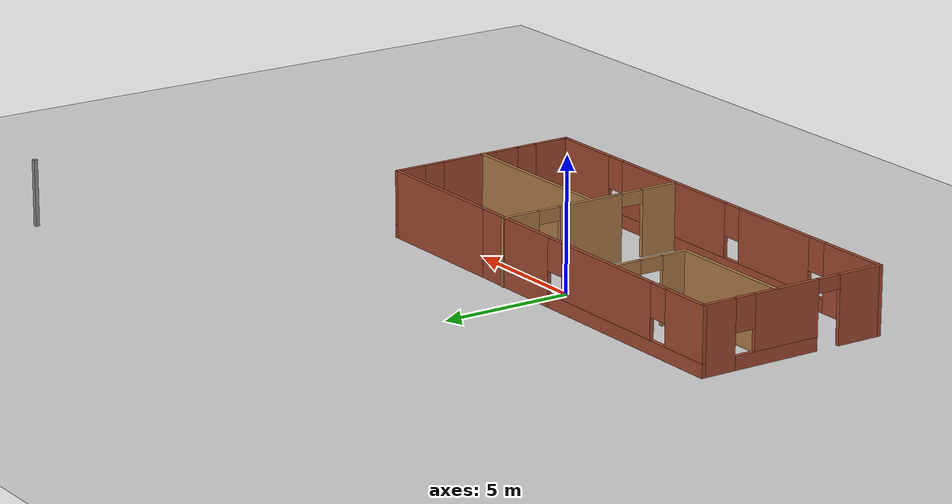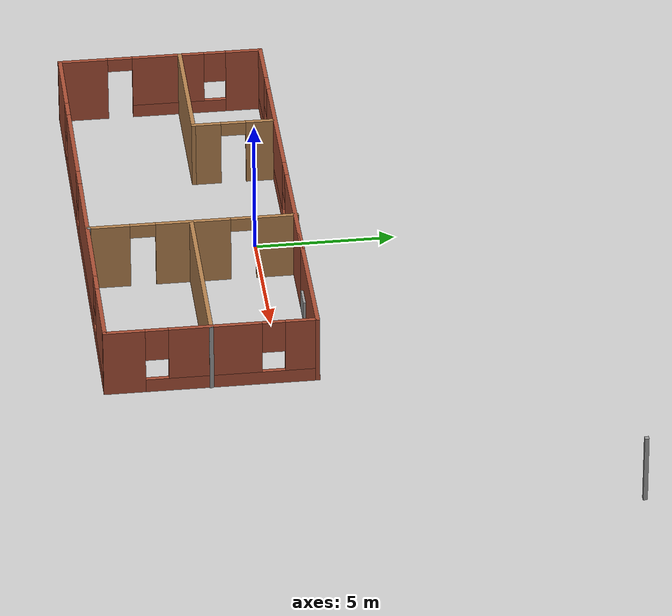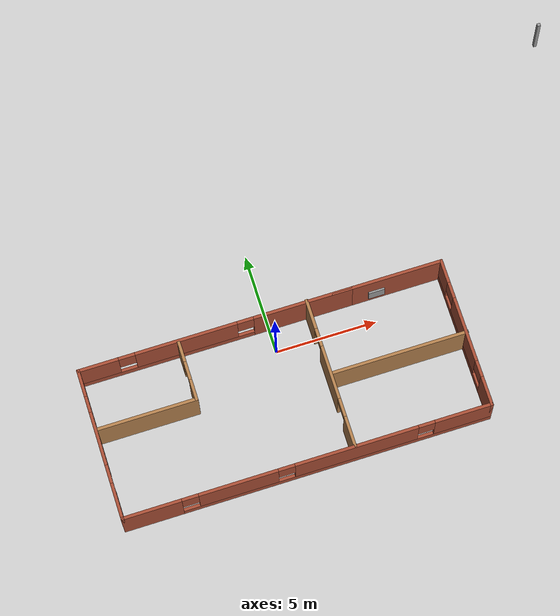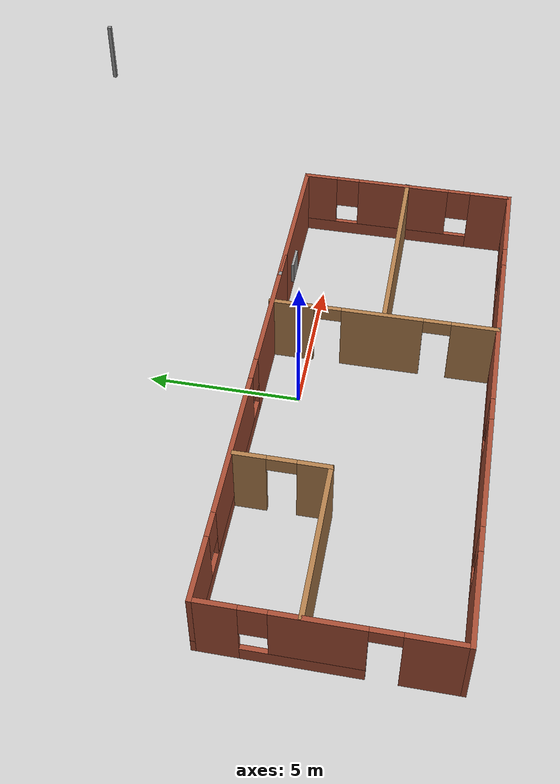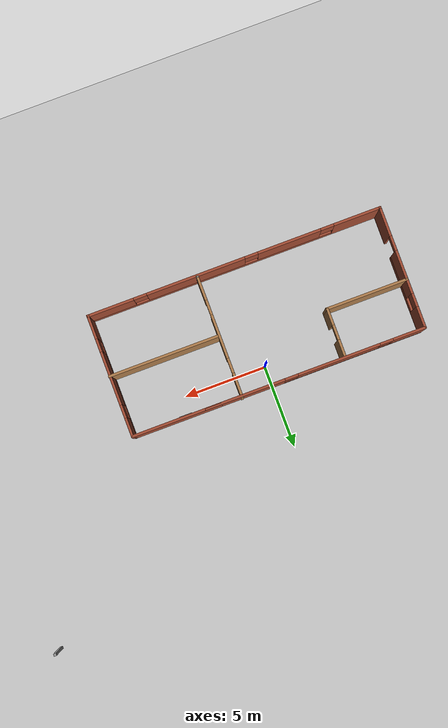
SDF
<sdf version="1.6">
 <world name="default">
  <light name="sun" type="directional">
   <pose>0 0 10 0 -0 0</pose>
   <diffuse>0.8 0.8 0.8 1</diffuse>
   <specular>0.2 0.2 0.2 1</specular>
   <attenuation>
    <range>1000</range>
    <constant>0.9</constant>
    <linear>0.01</linear>
    <quadratic>0.001</quadratic>
   </attenuation>
   <direction>-0.5 0.1 -0.9</direction>
  </light>
  <model name="ground_plane">
   <static>1</static>
   <link name="link">
    <collision name="collision">
     <geometry><plane><normal>0 0 1</normal><size>100 100</size></plane></geometry>
     <surface>
      <contact><collide_bitmask>65535</collide_bitmask></contact>
      <friction><ode><mu>100</mu><mu2>50</mu2></ode></friction>
     </surface>
    </collision>
    <visual name="visual">
     <cast_shadows>0</cast_shadows>
     <geometry><plane><normal>0 0 1</normal><size>100 100</size></plane></geometry>
     <material>
      <script><uri>file://media/materials/scripts/gazebo.material</uri><name>Gazebo/Grey</name></script>
     </material>
    </visual>
   </link>
  </model>
  <gravity>0 0 -9.8</gravity>
  <magnetic_field>6e-06 2.3e-05 -4.2e-05</magnetic_field>
  <atmosphere type="adiabatic"/>
  <physics name="default_physics" default="0" type="ode">
   <max_step_size>0.001</max_step_size>
   <real_time_factor>1</real_time_factor>
   <real_time_update_rate>1000</real_time_update_rate>
  </physics>
  <scene><ambient>0.4 0.4 0.4 1</ambient><background>0.7 0.7 0.7 1</background><shadows>1</shadows></scene>
  <spherical_coordinates>
   <surface_model>EARTH_WGS84</surface_model>
   <latitude_deg>0</latitude_deg>
   <longitude_deg>0</longitude_deg>
   <elevation>0</elevation>
   <heading_deg>0</heading_deg>
  </spherical_coordinates>
  <model name="House">
   <pose>3.87692 2.60224 0 0 -0 0</pose>
   <link name="Wall_13">
    <pose>-6.46944 -1.37364 0 0 -0 3.14159</pose>
    <visual name="Wall_13_Visual_0">
     <pose>-4.3125 0 1.25 0 -0 0</pose>
     <geometry><box><size>4.875 0.15 2.5</size></box></geometry>
     <material>
      <script><uri>file://media/materials/scripts/gazebo.material</uri><name>Gazebo/Bricks</name></script>
      <ambient>1 1 1 1</ambient>
     </material>
     <meta><layer>0</layer></meta>
    </visual>
    <collision name="Wall_13_Collision_0">
     <geometry><box><size>4.875 0.15 2.5</size></box></geometry>
     <pose>-4.3125 0 1.25 0 -0 0</pose>
    </collision>
    <visual name="Wall_13_Visual_1">
     <pose>2.4375 0 0.25 0 -0 0</pose>
     <geometry><box><size>8.625 0.15 0.5</size></box></geometry>
     <material>
      <script><uri>file://media/materials/scripts/gazebo.material</uri><name>Gazebo/Bricks</name></script>
      <ambient>1 1 1 1</ambient>
     </material>
     <meta><layer>0</layer></meta>
    </visual>
    <collision name="Wall_13_Collision_1">
     <geometry><box><size>8.625 0.15 0.5</size></box></geometry>
     <pose>2.4375 0 0.25 0 -0 0</pose>
    </collision>
    <visual name="Wall_13_Visual_2">
     <pose>1.425 0 1.5 0 -0 0</pose>
     <geometry><box><size>5 0.15 2</size></box></geometry>
     <material>
      <script><uri>file://media/materials/scripts/gazebo.material</uri><name>Gazebo/Bricks</name></script>
      <ambient>1 1 1 1</ambient>
     </material>
     <meta><layer>0</layer></meta>
    </visual>
    <collision name="Wall_13_Collision_2">
     <geometry><box><size>5 0.15 2</size></box></geometry>
     <pose>1.425 0 1.5 0 -0 0</pose>
    </collision>
    <visual name="Wall_13_Visual_3">
     <pose>5.7375 0 1.5 0 -0 0</pose>
     <geometry><box><size>2.025 0.15 2</size></box></geometry>
     <material>
      <script><uri>file://media/materials/scripts/gazebo.material</uri><name>Gazebo/Bricks</name></script>
      <ambient>1 1 1 1</ambient>
     </material>
     <meta><layer>0</layer></meta>
    </visual>
    <collision name="Wall_13_Collision_3">
     <geometry><box><size>2.025 0.15 2</size></box></geometry>
     <pose>5.7375 0 1.5 0 -0 0</pose>
    </collision>
    <visual name="Wall_13_Visual_4">
     <pose>-1.475 0 1.9 0 -0 0</pose>
     <geometry><box><size>0.8 0.15 1.2</size></box></geometry>
     <material>
      <script><uri>file://media/materials/scripts/gazebo.material</uri><name>Gazebo/Bricks</name></script>
      <ambient>1 1 1 1</ambient>
     </material>
     <meta><layer>0</layer></meta>
    </visual>
    <collision name="Wall_13_Collision_4">
     <geometry><box><size>0.8 0.15 1.2</size></box></geometry>
     <pose>-1.475 0 1.9 0 -0 0</pose>
    </collision>
    <visual name="Wall_13_Visual_5">
     <pose>4.325 0 1.9 0 -0 0</pose>
     <geometry><box><size>0.8 0.15 1.2</size></box></geometry>
     <material>
      <script><uri>file://media/materials/scripts/gazebo.material</uri><name>Gazebo/Bricks</name></script>
      <ambient>1 1 1 1</ambient>
     </material>
     <meta><layer>0</layer></meta>
    </visual>
    <collision name="Wall_13_Collision_5">
     <geometry><box><size>0.8 0.15 1.2</size></box></geometry>
     <pose>4.325 0 1.9 0 -0 0</pose>
    </collision>
   </link>
   <link name="Wall_14">
    <pose>-13.1444 -5.04864 0 0 0 -1.5708</pose>
    <visual name="Wall_14_Visual_0">
     <pose>-3.0725 0 1.25 0 -0 0</pose>
     <geometry><box><size>1.355 0.15 2.5</size></box></geometry>
     <material>
      <script><uri>file://media/materials/scripts/gazebo.material</uri><name>Gazebo/Bricks</name></script>
      <ambient>1 1 1 1</ambient>
     </material>
     <meta><layer>0</layer></meta>
    </visual>
    <collision name="Wall_14_Collision_0">
     <geometry><box><size>1.355 0.15 2.5</size></box></geometry>
     <pose>-3.0725 0 1.25 0 -0 0</pose>
    </collision>
    <visual name="Wall_14_Visual_1">
     <pose>2.8425 0 1.25 0 -0 0</pose>
     <geometry><box><size>1.815 0.15 2.5</size></box></geometry>
     <material>
      <script><uri>file://media/materials/scripts/gazebo.material</uri><name>Gazebo/Bricks</name></script>
      <ambient>1 1 1 1</ambient>
     </material>
     <meta><layer>0</layer></meta>
    </visual>
    <collision name="Wall_14_Collision_1">
     <geometry><box><size>1.815 0.15 2.5</size></box></geometry>
     <pose>2.8425 0 1.25 0 -0 0</pose>
    </collision>
    <visual name="Wall_14_Visual_2">
     <pose>-0.68 0 0.25 0 -0 0</pose>
     <geometry><box><size>3.43 0.15 0.5</size></box></geometry>
     <material>
      <script><uri>file://media/materials/scripts/gazebo.material</uri><name>Gazebo/Bricks</name></script>
      <ambient>1 1 1 1</ambient>
     </material>
     <meta><layer>0</layer></meta>
    </visual>
    <collision name="Wall_14_Collision_2">
     <geometry><box><size>3.43 0.15 0.5</size></box></geometry>
     <pose>-0.68 0 0.25 0 -0 0</pose>
    </collision>
    <visual name="Wall_14_Visual_3">
     <pose>-0.28 0 1.5 0 -0 0</pose>
     <geometry><box><size>2.63 0.15 2</size></box></geometry>
     <material>
      <script><uri>file://media/materials/scripts/gazebo.material</uri><name>Gazebo/Bricks</name></script>
      <ambient>1 1 1 1</ambient>
     </material>
     <meta><layer>0</layer></meta>
    </visual>
    <collision name="Wall_14_Collision_3">
     <geometry><box><size>2.63 0.15 2</size></box></geometry>
     <pose>-0.28 0 1.5 0 -0 0</pose>
    </collision>
    <visual name="Wall_14_Visual_4">
     <pose>-1.995 0 1.9 0 -0 0</pose>
     <geometry><box><size>0.8 0.15 1.2</size></box></geometry>
     <material>
      <script><uri>file://media/materials/scripts/gazebo.material</uri><name>Gazebo/Bricks</name></script>
      <ambient>1 1 1 1</ambient>
     </material>
     <meta><layer>0</layer></meta>
    </visual>
    <collision name="Wall_14_Collision_4">
     <geometry><box><size>0.8 0.15 1.2</size></box></geometry>
     <pose>-1.995 0 1.9 0 -0 0</pose>
    </collision>
    <visual name="Wall_14_Visual_5">
     <pose>1.485 0 2.25 0 -0 0</pose>
     <geometry><box><size>0.9 0.15 0.5</size></box></geometry>
     <material>
      <script><uri>file://media/materials/scripts/gazebo.material</uri><name>Gazebo/Bricks</name></script>
      <ambient>1 1 1 1</ambient>
     </material>
     <meta><layer>0</layer></meta>
    </visual>
    <collision name="Wall_14_Collision_5">
     <geometry><box><size>0.9 0.15 0.5</size></box></geometry>
     <pose>1.485 0 2.25 0 -0 0</pose>
    </collision>
   </link>
   <link name="Wall_15">
    <pose>-4.21944 -8.72364 0 0 -0 0</pose>
    <visual name="Wall_15_Visual_0">
     <pose>-7.5475 0 1.25 0 -0 0</pose>
     <geometry><box><size>2.905 0.15 2.5</size></box></geometry>
     <material>
      <script><uri>file://media/materials/scripts/gazebo.material</uri><name>Gazebo/Bricks</name></script>
      <ambient>1 1 1 1</ambient>
     </material>
     <meta><layer>0</layer></meta>
    </visual>
    <collision name="Wall_15_Collision_0">
     <geometry><box><size>2.905 0.15 2.5</size></box></geometry>
     <pose>-7.5475 0 1.25 0 -0 0</pose>
    </collision>
    <visual name="Wall_15_Visual_1">
     <pose>1.4525 0 0.25 0 -0 0</pose>
     <geometry><box><size>15.095 0.15 0.5</size></box></geometry>
     <material>
      <script><uri>file://media/materials/scripts/gazebo.material</uri><name>Gazebo/Bricks</name></script>
      <ambient>1 1 1 1</ambient>
     </material>
     <meta><layer>0</layer></meta>
    </visual>
    <collision name="Wall_15_Collision_1">
     <geometry><box><size>15.095 0.15 0.5</size></box></geometry>
     <pose>1.4525 0 0.25 0 -0 0</pose>
    </collision>
    <visual name="Wall_15_Visual_2">
     <pose>-3.375 0 1.5 0 -0 0</pose>
     <geometry><box><size>3.84 0.15 2</size></box></geometry>
     <material>
      <script><uri>file://media/materials/scripts/gazebo.material</uri><name>Gazebo/Bricks</name></script>
      <ambient>1 1 1 1</ambient>
     </material>
     <meta><layer>0</layer></meta>
    </visual>
    <collision name="Wall_15_Collision_2">
     <geometry><box><size>3.84 0.15 2</size></box></geometry>
     <pose>-3.375 0 1.5 0 -0 0</pose>
    </collision>
    <visual name="Wall_15_Visual_3">
     <pose>2.345 0 1.5 0 -0 0</pose>
     <geometry><box><size>6 0.15 2</size></box></geometry>
     <material>
      <script><uri>file://media/materials/scripts/gazebo.material</uri><name>Gazebo/Bricks</name></script>
      <ambient>1 1 1 1</ambient>
     </material>
     <meta><layer>0</layer></meta>
    </visual>
    <collision name="Wall_15_Collision_3">
     <geometry><box><size>6 0.15 2</size></box></geometry>
     <pose>2.345 0 1.5 0 -0 0</pose>
    </collision>
    <visual name="Wall_15_Visual_4">
     <pose>7.5725 0 1.5 0 -0 0</pose>
     <geometry><box><size>2.855 0.15 2</size></box></geometry>
     <material>
      <script><uri>file://media/materials/scripts/gazebo.material</uri><name>Gazebo/Bricks</name></script>
      <ambient>1 1 1 1</ambient>
     </material>
     <meta><layer>0</layer></meta>
    </visual>
    <collision name="Wall_15_Collision_4">
     <geometry><box><size>2.855 0.15 2</size></box></geometry>
     <pose>7.5725 0 1.5 0 -0 0</pose>
    </collision>
    <visual name="Wall_15_Visual_5">
     <pose>-5.695 0 1.9 0 -0 0</pose>
     <geometry><box><size>0.8 0.15 1.2</size></box></geometry>
     <material>
      <script><uri>file://media/materials/scripts/gazebo.material</uri><name>Gazebo/Bricks</name></script>
      <ambient>1 1 1 1</ambient>
     </material>
     <meta><layer>0</layer></meta>
    </visual>
    <collision name="Wall_15_Collision_5">
     <geometry><box><size>0.8 0.15 1.2</size></box></geometry>
     <pose>-5.695 0 1.9 0 -0 0</pose>
    </collision>
    <visual name="Wall_15_Visual_6">
     <pose>-1.055 0 1.9 0 -0 0</pose>
     <geometry><box><size>0.8 0.15 1.2</size></box></geometry>
     <material>
      <script><uri>file://media/materials/scripts/gazebo.material</uri><name>Gazebo/Bricks</name></script>
      <ambient>1 1 1 1</ambient>
     </material>
     <meta><layer>0</layer></meta>
    </visual>
    <collision name="Wall_15_Collision_6">
     <geometry><box><size>0.8 0.15 1.2</size></box></geometry>
     <pose>-1.055 0 1.9 0 -0 0</pose>
    </collision>
    <visual name="Wall_15_Visual_7">
     <pose>5.745 0 1.9 0 -0 0</pose>
     <geometry><box><size>0.8 0.15 1.2</size></box></geometry>
     <material>
      <script><uri>file://media/materials/scripts/gazebo.material</uri><name>Gazebo/Bricks</name></script>
      <ambient>1 1 1 1</ambient>
     </material>
     <meta><layer>0</layer></meta>
    </visual>
    <collision name="Wall_15_Collision_7">
     <geometry><box><size>0.8 0.15 1.2</size></box></geometry>
     <pose>5.745 0 1.9 0 -0 0</pose>
    </collision>
   </link>
   <link name="Wall_16">
    <pose>4.70556 -5.04864 0 0 -0 1.5708</pose>
    <visual name="Wall_16_Visual_0">
     <pose>-3.0175 0 1.25 0 -0 0</pose>
     <geometry><box><size>1.465 0.15 2.5</size></box></geometry>
     <material>
      <script><uri>file://media/materials/scripts/gazebo.material</uri><name>Gazebo/Bricks</name></script>
      <ambient>1 1 1 1</ambient>
     </material>
     <meta><layer>0</layer></meta>
    </visual>
    <collision name="Wall_16_Collision_0">
     <geometry><box><size>1.465 0.15 2.5</size></box></geometry>
     <pose>-3.0175 0 1.25 0 -0 0</pose>
    </collision>
    <visual name="Wall_16_Visual_1">
     <pose>0.7325 0 0.25 0 -0 0</pose>
     <geometry><box><size>6.035 0.15 0.5</size></box></geometry>
     <material>
      <script><uri>file://media/materials/scripts/gazebo.material</uri><name>Gazebo/Bricks</name></script>
      <ambient>1 1 1 1</ambient>
     </material>
     <meta><layer>0</layer></meta>
    </visual>
    <collision name="Wall_16_Collision_1">
     <geometry><box><size>6.035 0.15 0.5</size></box></geometry>
     <pose>0.7325 0 0.25 0 -0 0</pose>
    </collision>
    <visual name="Wall_16_Visual_2">
     <pose>0.135 0 1.5 0 -0 0</pose>
     <geometry><box><size>3.24 0.15 2</size></box></geometry>
     <material>
      <script><uri>file://media/materials/scripts/gazebo.material</uri><name>Gazebo/Bricks</name></script>
      <ambient>1 1 1 1</ambient>
     </material>
     <meta><layer>0</layer></meta>
    </visual>
    <collision name="Wall_16_Collision_2">
     <geometry><box><size>3.24 0.15 2</size></box></geometry>
     <pose>0.135 0 1.5 0 -0 0</pose>
    </collision>
    <visual name="Wall_16_Visual_3">
     <pose>3.1525 0 1.5 0 -0 0</pose>
     <geometry><box><size>1.195 0.15 2</size></box></geometry>
     <material>
      <script><uri>file://media/materials/scripts/gazebo.material</uri><name>Gazebo/Bricks</name></script>
      <ambient>1 1 1 1</ambient>
     </material>
     <meta><layer>0</layer></meta>
    </visual>
    <collision name="Wall_16_Collision_3">
     <geometry><box><size>1.195 0.15 2</size></box></geometry>
     <pose>3.1525 0 1.5 0 -0 0</pose>
    </collision>
    <visual name="Wall_16_Visual_4">
     <pose>-1.885 0 1.9 0 -0 0</pose>
     <geometry><box><size>0.8 0.15 1.2</size></box></geometry>
     <material>
      <script><uri>file://media/materials/scripts/gazebo.material</uri><name>Gazebo/Bricks</name></script>
      <ambient>1 1 1 1</ambient>
     </material>
     <meta><layer>0</layer></meta>
    </visual>
    <collision name="Wall_16_Collision_4">
     <geometry><box><size>0.8 0.15 1.2</size></box></geometry>
     <pose>-1.885 0 1.9 0 -0 0</pose>
    </collision>
    <visual name="Wall_16_Visual_5">
     <pose>2.155 0 1.9 0 -0 0</pose>
     <geometry><box><size>0.8 0.15 1.2</size></box></geometry>
     <material>
      <script><uri>file://media/materials/scripts/gazebo.material</uri><name>Gazebo/Bricks</name></script>
      <ambient>1 1 1 1</ambient>
     </material>
     <meta><layer>0</layer></meta>
    </visual>
    <collision name="Wall_16_Collision_5">
     <geometry><box><size>0.8 0.15 1.2</size></box></geometry>
     <pose>2.155 0 1.9 0 -0 0</pose>
    </collision>
   </link>
   <link name="Wall_17">
    <collision name="Wall_17_Collision">
     <geometry><box><size>5.5 0.15 2.5</size></box></geometry>
     <pose>0 0 1.25 0 -0 0</pose>
    </collision>
    <visual name="Wall_17_Visual">
     <pose>0 0 1.25 0 -0 0</pose>
     <geometry><box><size>5.5 0.15 2.5</size></box></geometry>
     <material>
      <script><uri>file://media/materials/scripts/gazebo.material</uri><name>Gazebo/Bricks</name></script>
      <ambient>1 1 1 1</ambient>
     </material>
     <meta><layer>0</layer></meta>
    </visual>
    <pose>2.03056 -1.37364 0 0 -0 3.14159</pose>
   </link>
   <link name="Wall_18">
    <collision name="Wall_18_Collision">
     <geometry><box><size>0.16 0.15 2.5</size></box></geometry>
     <pose>0 0 1.25 0 -0 0</pose>
    </collision>
    <visual name="Wall_18_Visual">
     <pose>0 0 1.25 0 -0 0</pose>
     <geometry><box><size>0.16 0.15 2.5</size></box></geometry>
     <material>
      <script><uri>file://media/materials/scripts/gazebo.material</uri><name>Gazebo/Grey</name></script>
      <ambient>1 1 1 1</ambient>
     </material>
     <meta><layer>0</layer></meta>
    </visual>
    <pose>-0.63944 -1.37364 0 0 -0 0</pose>
   </link>
   <link name="Wall_2">
    <collision name="Wall_2_Collision">
     <geometry><box><size>0.16 0.15 2.5</size></box></geometry>
     <pose>0 0 1.25 0 -0 0</pose>
    </collision>
    <visual name="Wall_2_Visual">
     <pose>0 0 1.25 0 -0 0</pose>
     <geometry><box><size>0.16 0.15 2.5</size></box></geometry>
     <material>
      <script><uri>file://media/materials/scripts/gazebo.material</uri><name>Gazebo/Grey</name></script>
      <ambient>1 1 1 1</ambient>
     </material>
     <meta><layer>0</layer></meta>
    </visual>
    <pose>13.1394 8.72364 0 0 -0 0</pose>
   </link>
   <link name="Wall_28">
    <pose>-1.95444 -5.00864 0 0 0 -1.5708</pose>
    <visual name="Wall_28_Visual_0">
     <pose>-2.9975 0 1.25 0 -0 0</pose>
     <geometry><box><size>1.505 0.15 2.5</size></box></geometry>
     <material>
      <script><uri>file://media/materials/scripts/gazebo.material</uri><name>Gazebo/Wood</name></script>
      <ambient>1 1 1 1</ambient>
     </material>
     <meta><layer>0</layer></meta>
    </visual>
    <collision name="Wall_28_Collision_0">
     <geometry><box><size>1.505 0.15 2.5</size></box></geometry>
     <pose>-2.9975 0 1.25 0 -0 0</pose>
    </collision>
    <visual name="Wall_28_Visual_1">
     <pose>-0.015 0 1.25 0 -0 0</pose>
     <geometry><box><size>2.66 0.15 2.5</size></box></geometry>
     <material>
      <script><uri>file://media/materials/scripts/gazebo.material</uri><name>Gazebo/Wood</name></script>
      <ambient>1 1 1 1</ambient>
     </material>
     <meta><layer>0</layer></meta>
    </visual>
    <collision name="Wall_28_Collision_1">
     <geometry><box><size>2.66 0.15 2.5</size></box></geometry>
     <pose>-0.015 0 1.25 0 -0 0</pose>
    </collision>
    <visual name="Wall_28_Visual_2">
     <pose>2.9825 0 1.25 0 -0 0</pose>
     <geometry><box><size>1.535 0.15 2.5</size></box></geometry>
     <material>
      <script><uri>file://media/materials/scripts/gazebo.material</uri><name>Gazebo/Wood</name></script>
      <ambient>1 1 1 1</ambient>
     </material>
     <meta><layer>0</layer></meta>
    </visual>
    <collision name="Wall_28_Collision_2">
     <geometry><box><size>1.535 0.15 2.5</size></box></geometry>
     <pose>2.9825 0 1.25 0 -0 0</pose>
    </collision>
    <visual name="Wall_28_Visual_3">
     <pose>-1.795 0 2.25 0 -0 0</pose>
     <geometry><box><size>0.9 0.15 0.5</size></box></geometry>
     <material>
      <script><uri>file://media/materials/scripts/gazebo.material</uri><name>Gazebo/Wood</name></script>
      <ambient>1 1 1 1</ambient>
     </material>
     <meta><layer>0</layer></meta>
    </visual>
    <collision name="Wall_28_Collision_3">
     <geometry><box><size>0.9 0.15 0.5</size></box></geometry>
     <pose>-1.795 0 2.25 0 -0 0</pose>
    </collision>
    <visual name="Wall_28_Visual_4">
     <pose>1.765 0 2.25 0 -0 0</pose>
     <geometry><box><size>0.9 0.15 0.5</size></box></geometry>
     <material>
      <script><uri>file://media/materials/scripts/gazebo.material</uri><name>Gazebo/Wood</name></script>
      <ambient>1 1 1 1</ambient>
     </material>
     <meta><layer>0</layer></meta>
    </visual>
    <collision name="Wall_28_Collision_4">
     <geometry><box><size>0.9 0.15 0.5</size></box></geometry>
     <pose>1.765 0 2.25 0 -0 0</pose>
    </collision>
   </link>
   <link name="Wall_29">
    <collision name="Wall_29_Collision">
     <geometry><box><size>0.16 0.15 2.5</size></box></geometry>
     <pose>0 0 1.25 0 -0 0</pose>
    </collision>
    <visual name="Wall_29_Visual">
     <pose>0 0 1.25 0 -0 0</pose>
     <geometry><box><size>0.16 0.15 2.5</size></box></geometry>
     <material>
      <script><uri>file://media/materials/scripts/gazebo.material</uri><name>Gazebo/Grey</name></script>
      <ambient>1 1 1 1</ambient>
     </material>
     <meta><layer>0</layer></meta>
    </visual>
    <pose>-1.94944 -8.68364 0 0 -0 0</pose>
   </link>
   <link name="Wall_34">
    <collision name="Wall_34_Collision">
     <geometry><box><size>0.16 0.15 2.5</size></box></geometry>
     <pose>0 0 1.25 0 -0 0</pose>
    </collision>
    <visual name="Wall_34_Visual">
     <pose>0 0 1.25 0 -0 0</pose>
     <geometry><box><size>0.16 0.15 2.5</size></box></geometry>
     <material>
      <script><uri>file://media/materials/scripts/gazebo.material</uri><name>Gazebo/Grey</name></script>
      <ambient>1 1 1 1</ambient>
     </material>
     <meta><layer>0</layer></meta>
    </visual>
    <pose>4.73056 -5.05364 0 0 -0 0</pose>
   </link>
   <link name="Wall_35">
    <collision name="Wall_35_Collision">
     <geometry><box><size>6.75 0.15 2.5</size></box></geometry>
     <pose>0 0 1.25 0 -0 0</pose>
    </collision>
    <visual name="Wall_35_Visual">
     <pose>0 0 1.25 0 -0 0</pose>
     <geometry><box><size>6.75 0.15 2.5</size></box></geometry>
     <material>
      <script><uri>file://media/materials/scripts/gazebo.material</uri><name>Gazebo/Wood</name></script>
      <ambient>1 1 1 1</ambient>
     </material>
     <meta><layer>0</layer></meta>
    </visual>
    <pose>1.43556 -5.05364 0 0 -0 3.14159</pose>
   </link>
   <link name="Wall_37">
    <collision name="Wall_37_Collision">
     <geometry><box><size>5 0.15 2.5</size></box></geometry>
     <pose>0 0 1.25 0 -0 0</pose>
    </collision>
    <visual name="Wall_37_Visual">
     <pose>0 0 1.25 0 -0 0</pose>
     <geometry><box><size>5 0.15 2.5</size></box></geometry>
     <material>
      <script><uri>file://media/materials/scripts/gazebo.material</uri><name>Gazebo/Wood</name></script>
      <ambient>1 1 1 1</ambient>
     </material>
     <meta><layer>0</layer></meta>
    </visual>
    <pose>-10.6994 -4.33364 0 0 -0 3.14159</pose>
   </link>
   <link name="Wall_43">
    <pose>-8.27444 -2.90864 0 0 -0 1.5708</pose>
    <visual name="Wall_43_Visual_0">
     <pose>-0.9675 0 1.25 0 -0 0</pose>
     <geometry><box><size>1.065 0.15 2.5</size></box></geometry>
     <material>
      <script><uri>file://media/materials/scripts/gazebo.material</uri><name>Gazebo/Wood</name></script>
      <ambient>1 1 1 1</ambient>
     </material>
     <meta><layer>0</layer></meta>
    </visual>
    <collision name="Wall_43_Collision_0">
     <geometry><box><size>1.065 0.15 2.5</size></box></geometry>
     <pose>-0.9675 0 1.25 0 -0 0</pose>
    </collision>
    <visual name="Wall_43_Visual_1">
     <pose>0.9825 0 1.25 0 -0 0</pose>
     <geometry><box><size>1.035 0.15 2.5</size></box></geometry>
     <material>
      <script><uri>file://media/materials/scripts/gazebo.material</uri><name>Gazebo/Wood</name></script>
      <ambient>1 1 1 1</ambient>
     </material>
     <meta><layer>0</layer></meta>
    </visual>
    <collision name="Wall_43_Collision_1">
     <geometry><box><size>1.035 0.15 2.5</size></box></geometry>
     <pose>0.9825 0 1.25 0 -0 0</pose>
    </collision>
    <visual name="Wall_43_Visual_2">
     <pose>0.015 0 2.25 0 -0 0</pose>
     <geometry><box><size>0.9 0.15 0.5</size></box></geometry>
     <material>
      <script><uri>file://media/materials/scripts/gazebo.material</uri><name>Gazebo/Wood</name></script>
      <ambient>1 1 1 1</ambient>
     </material>
     <meta><layer>0</layer></meta>
    </visual>
    <collision name="Wall_43_Collision_2">
     <geometry><box><size>0.9 0.15 0.5</size></box></geometry>
     <pose>0.015 0 2.25 0 -0 0</pose>
    </collision>
   </link>
   <link name="Window_3">
    <collision name="Window_3_Collision">
     <geometry><box><size>0.8 0.17 0.8</size></box></geometry>
     <pose>0 0 0.4 0 -0 0</pose>
    </collision>
    <visual name="Window_3_Visual">
     <pose>0 0 0.4 0 -0 0</pose>
     <geometry><box><size>0.8 0.17 0.8</size></box></geometry>
     <material>
      <script><uri>file://media/materials/scripts/gazebo.material</uri><name>Gazebo/Grey</name></script>
     </material>
    </visual>
    <pose>1.48556 -1.45364 0.5 0 -0 0</pose>
   </link>
   <static>1</static>
  </model>
  <plugin filename="libcollision_map_creator.so" name="collision_map_creator"/>
 </world>
</sdf>
